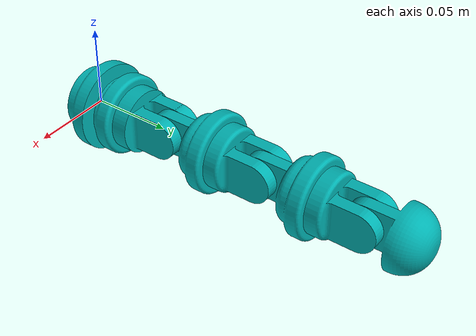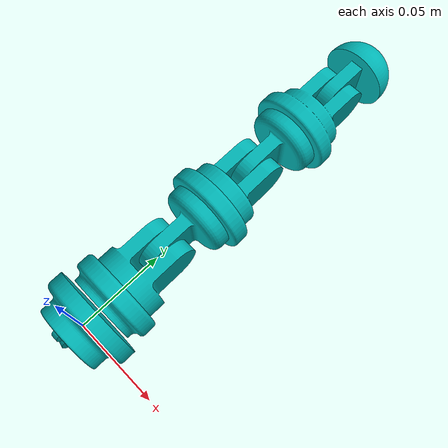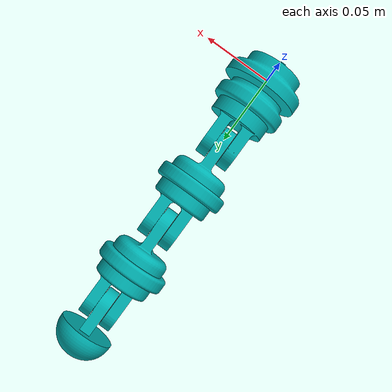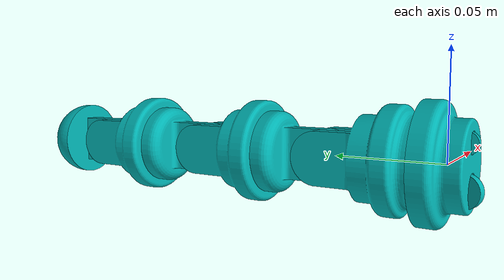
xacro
<?xml version="1.0" ?>
<robot name="major_snakebot" xmlns:xacro="http://www.ros.org/wiki/xacro">

<xacro:include filename="$(find major_snakebot_description)/urdf/materials.xacro" />
<xacro:include filename="$(find major_snakebot_description)/urdf/major_snakebot.trans" />
<xacro:include filename="$(find major_snakebot_description)/urdf/major_snakebot.gazebo" />
<link name="base_link">
  <inertial>
    <origin xyz="-1.0063426567998859e-14 0.0016920743650211212 5.498025416273251e-05" rpy="0 0 0"/>
    <mass value="0.28034499278694097"/>
    <inertia ixx="5.2e-05" iyy="8.9e-05" izz="5.3e-05" ixy="-0.0" iyz="0.0" ixz="-0.0"/>
  </inertial>
  <visual>
    <origin xyz="0 0 0" rpy="0 0 0"/>
    <geometry>
      <mesh filename="package://major_snakebot_description/meshes/base_link.stl" scale="0.001 0.001 0.001"/>
    </geometry>
    <material name="silver"/>
  </visual>
  <collision>
    <origin xyz="0 0 0" rpy="0 0 0"/>
    <geometry>
      <mesh filename="package://major_snakebot_description/meshes/base_link.stl" scale="0.001 0.001 0.001"/>
    </geometry>
  </collision>
</link>

<link name="link1_1">
  <inertial>
    <origin xyz="-0.00028205388177530055 0.019536414443669894 -2.684846921085119e-07" rpy="0 0 0"/>
    <mass value="0.38257083390368296"/>
    <inertia ixx="0.000106" iyy="8.8e-05" izz="0.000108" ixy="2e-06" iyz="0.0" ixz="-0.0"/>
  </inertial>
  <visual>
    <origin xyz="-0.0 -0.01 -0.0" rpy="0 0 0"/>
    <geometry>
      <mesh filename="package://major_snakebot_description/meshes/link1_1.stl" scale="0.001 0.001 0.001"/>
    </geometry>
    <material name="silver"/>
  </visual>
  <collision>
    <origin xyz="-0.0 -0.01 -0.0" rpy="0 0 0"/>
    <geometry>
      <mesh filename="package://major_snakebot_description/meshes/link1_1.stl" scale="0.001 0.001 0.001"/>
    </geometry>
  </collision>
</link>

<link name="camera_1">
  <inertial>
    <origin xyz="5.228390152620037e-13 -0.0020000000000000035 0.0" rpy="0 0 0"/>
    <mass value="0.0024661502330680938"/>
    <inertia ixx="0.0" iyy="0.0" izz="0.0" ixy="-0.0" iyz="-0.0" ixz="-0.0"/>
  </inertial>
  <visual>
    <origin xyz="-0.0 0.008 -0.01" rpy="0 0 0"/>
    <geometry>
      <mesh filename="package://major_snakebot_description/meshes/camera_1.stl" scale="0.001 0.001 0.001"/>
    </geometry>
    <material name="silver"/>
  </visual>
  <collision>
    <origin xyz="-0.0 0.008 -0.01" rpy="0 0 0"/>
    <geometry>
      <mesh filename="package://major_snakebot_description/meshes/camera_1.stl" scale="0.001 0.001 0.001"/>
    </geometry>
  </collision>
</link>

<link name="lidar_1">
  <inertial>
    <origin xyz="-1.5706442871424766e-18 -0.0020000000000000018 0.0" rpy="0 0 0"/>
    <mass value="0.005548838024402975"/>
    <inertia ixx="0.0" iyy="0.0" izz="0.0" ixy="-0.0" iyz="-0.0" ixz="-0.0"/>
  </inertial>
  <visual>
    <origin xyz="-0.0 0.008 0.01" rpy="0 0 0"/>
    <geometry>
      <mesh filename="package://major_snakebot_description/meshes/lidar_1.stl" scale="0.001 0.001 0.001"/>
    </geometry>
    <material name="silver"/>
  </visual>
  <collision>
    <origin xyz="-0.0 0.008 0.01" rpy="0 0 0"/>
    <geometry>
      <mesh filename="package://major_snakebot_description/meshes/lidar_1.stl" scale="0.001 0.001 0.001"/>
    </geometry>
  </collision>
</link>

<link name="organ_1">
  <inertial>
    <origin xyz="-0.0094703113301693 0.03638400045598387 -7.649285923273954e-05" rpy="0 0 0"/>
    <mass value="0.478106946885108"/>
    <inertia ixx="0.000194" iyy="9.8e-05" izz="0.000194" ixy="3e-06" iyz="1e-06" ixz="-0.0"/>
  </inertial>
  <visual>
    <origin xyz="-0.008763 -0.0545 0.0" rpy="0 0 0"/>
    <geometry>
      <mesh filename="package://major_snakebot_description/meshes/organ_1.stl" scale="0.001 0.001 0.001"/>
    </geometry>
    <material name="silver"/>
  </visual>
  <collision>
    <origin xyz="-0.008763 -0.0545 0.0" rpy="0 0 0"/>
    <geometry>
      <mesh filename="package://major_snakebot_description/meshes/organ_1.stl" scale="0.001 0.001 0.001"/>
    </geometry>
  </collision>
</link>

<link name="organ_2">
  <inertial>
    <origin xyz="-0.009470138123030918 0.03638400045598389 -0.00011934070620622556" rpy="0 0 0"/>
    <mass value="0.478106946885108"/>
    <inertia ixx="0.000194" iyy="9.8e-05" izz="0.000194" ixy="3e-06" iyz="1e-06" ixz="-0.0"/>
  </inertial>
  <visual>
    <origin xyz="-0.008927 -0.12195 0.000414" rpy="0 0 0"/>
    <geometry>
      <mesh filename="package://major_snakebot_description/meshes/organ_2.stl" scale="0.001 0.001 0.001"/>
    </geometry>
    <material name="silver"/>
  </visual>
  <collision>
    <origin xyz="-0.008927 -0.12195 0.000414" rpy="0 0 0"/>
    <geometry>
      <mesh filename="package://major_snakebot_description/meshes/organ_2.stl" scale="0.001 0.001 0.001"/>
    </geometry>
  </collision>
</link>

<link name="tail_1">
  <inertial>
    <origin xyz="-0.009434348124270846 -0.046036136514666676 0.0004142043060530326" rpy="0 0 0"/>
    <mass value="0.19624058941494574"/>
    <inertia ixx="4.3e-05" iyy="2.7e-05" izz="4.1e-05" ixy="1e-06" iyz="0.0" ixz="0.0"/>
  </inertial>
  <visual>
    <origin xyz="-0.009255 -0.25685 0.001328" rpy="0 0 0"/>
    <geometry>
      <mesh filename="package://major_snakebot_description/meshes/tail_1.stl" scale="0.001 0.001 0.001"/>
    </geometry>
    <material name="silver"/>
  </visual>
  <collision>
    <origin xyz="-0.009255 -0.25685 0.001328" rpy="0 0 0"/>
    <geometry>
      <mesh filename="package://major_snakebot_description/meshes/tail_1.stl" scale="0.001 0.001 0.001"/>
    </geometry>
  </collision>
</link>

<joint name="head_joint" type="continuous">
  <origin xyz="0.0 0.01 0.0" rpy="0 0 0"/>
  <parent link="base_link"/>
  <child link="link1_1"/>
  <axis xyz="0.0 1.0 0.0"/>
</joint>

<joint name="camera_joint" type="fixed">
  <origin xyz="0.0 -0.008 0.01" rpy="0 0 -1.57"/>
  <parent link="base_link"/>
  <child link="camera_1"/>
</joint>

<joint name="lidar_joint" type="fixed">
  <origin xyz="0.0 -0.008 -0.01" rpy="0 0 -1.80"/>
  <parent link="base_link"/>
  <child link="lidar_1"/>
</joint>

<joint name="joint1" type="continuous">
  <origin xyz="0.008763 0.0445 -0.0" rpy="0 0 0"/>
  <parent link="link1_1"/>
  <child link="organ_1"/>
  <axis xyz="-1.0 0.0 0.0"/>
</joint>

<joint name="joint2" type="continuous">
  <origin xyz="0.000164 0.06745 -0.000414" rpy="0 0 0"/>
  <parent link="organ_1"/>
  <child link="organ_2"/>
  <axis xyz="-1.0 0.0 0.0"/>
</joint>

<joint name="joint3" type="fixed">
  <origin xyz="0.000328 0.1349 -0.000914" rpy="0 0 0"/>
  <parent link="organ_2"/>
  <child link="tail_1"/>
  <axis xyz="1.0 0.0 0.0"/>
</joint>

<link name="camera_link_optical">
</link>

<joint name="camera_optical_joint" type="fixed">
        <parent link="camera_1"/>
        <child link="camera_link_optical"/>
        <origin xyz="0 0 0" rpy="${-pi/2} 0 ${-pi/2}"/>
</joint>

</robot>

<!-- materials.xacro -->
<robot name="major_snakebot" xmlns:xacro="http://www.ros.org/wiki/xacro" >

<material name="silver">
  <color rgba="0.000 0.700 0.700 1.000"/>
</material>

</robot>

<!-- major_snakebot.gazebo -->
<robot name="major_snakebot" xmlns:xacro="http://www.ros.org/wiki/xacro" >

<xacro:property name="body_color" value="Gazebo/Silver" />

<gazebo>
  <plugin name="gazebo_ros_control" filename="libgazebo_ros_control.so"/>
</gazebo>

<gazebo reference="base_link">
  <material>Gazebo/Black</material>
  <mu1>0.2</mu1>
  <mu2>0.2</mu2>
  <selfCollide>true</selfCollide>
  <gravity>true</gravity>
</gazebo>

<gazebo reference="link1_1">
  <material>Gazebo/Yellow</material>
  <mu1>0.2</mu1>
  <mu2>0.2</mu2>
  <selfCollide>true</selfCollide>
</gazebo>

<gazebo reference="camera_1">
  <material>${body_color}</material>
  <mu1>0.2</mu1>
  <mu2>0.2</mu2>
  <selfCollide>true</selfCollide>
  <sensor name="camera" type="camera">
            <pose> 0 0 0 0 0 0 </pose>
            <visualize>true</visualize>
            <update_rate>10</update_rate>
            <camera>
                <horizontal_fov>1.089</horizontal_fov>
                <image>
                    <format>R8G8B8</format>
                    <width>640</width>
                    <height>480</height>
                </image>
                <clip>
                    <near>0.05</near>
                    <far>8.0</far>
                </clip>
            </camera>
            <plugin name="camera_controller" filename="libgazebo_ros_camera.so">
                <frame_name>camera_link_optical</frame_name>
            </plugin>
        </sensor>
</gazebo>

<gazebo reference="lidar_1">
  <material>${body_color}</material>
  <mu1>0.2</mu1>
  <mu2>0.2</mu2>
  <selfCollide>true</selfCollide>
  <sensor name="laser" type="ray">
            <pose> 0 0 0 0 0 0 </pose>
            <visualize>true</visualize>
            <update_rate>10</update_rate>
            <ray>
                <scan>
                    <horizontal>
                        <samples>360</samples>
                        <min_angle>-1.57</min_angle>
                        <max_angle>1.57</max_angle>
                    </horizontal>
                </scan>
                <range>
                    <min>0.3</min>
                    <max>12</max>
                </range>
            </ray>
            <plugin name="laser_controller" filename="libgazebo_ros_ray_sensor.so">
                <ros>
                    <argument>~/out:=scan</argument>
                </ros>
                <output_type>sensor_msgs/LaserScan</output_type>
                <frame_name>laser_frame</frame_name>
            </plugin>
        </sensor>
</gazebo>

<gazebo reference="organ_1">
  <material>Gazebo/Black</material>
  <mu1>0.2</mu1>
  <mu2>0.2</mu2>
  <selfCollide>true</selfCollide>
</gazebo>

<gazebo reference="organ_2">
  <material>Gazebo/Yellow</material>
  <mu1>0.2</mu1>
  <mu2>0.2</mu2>
  <selfCollide>true</selfCollide>
</gazebo>

<gazebo reference="tail_1">
  <material>Gazebo/Black</material>
  <mu1>0.2</mu1>
  <mu2>0.2</mu2>
  <selfCollide>true</selfCollide>
</gazebo>

</robot>
